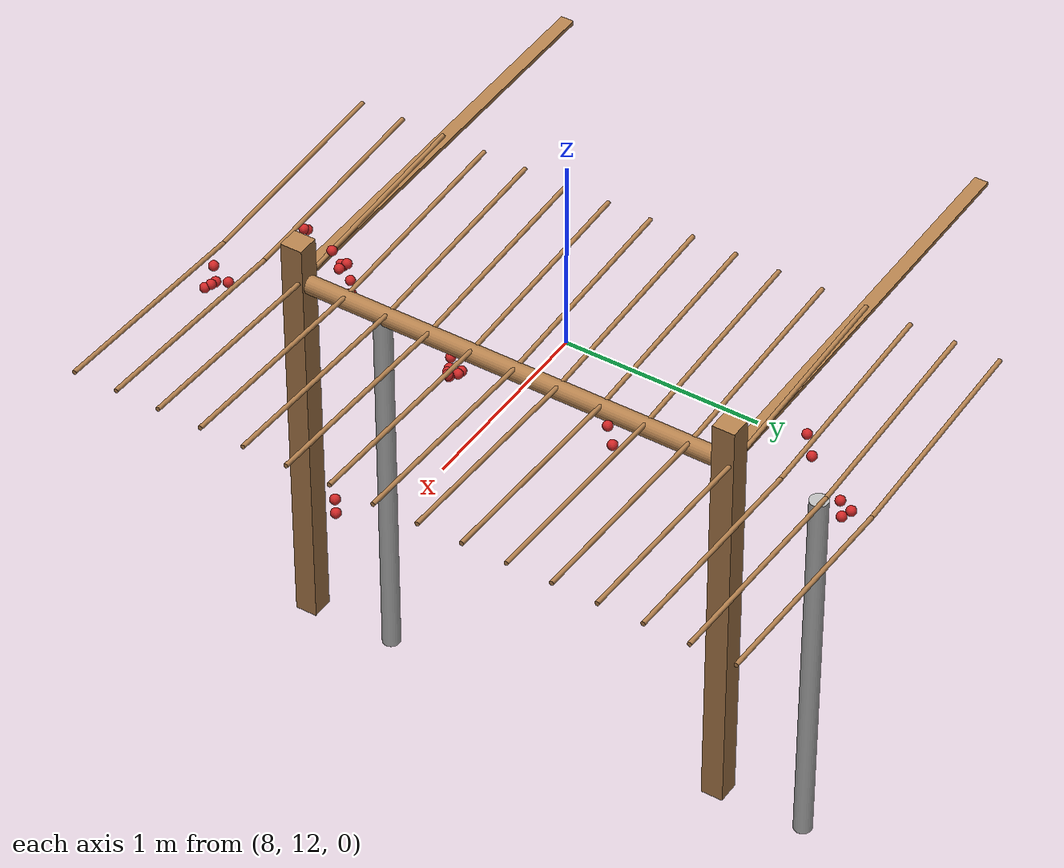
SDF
<sdf version="1.4">
 <model name="pergola">
  <include><name>post_61</name><pose>10.0 12.0 0 0 0 0</pose><uri>model://post</uri></include>
  <include><name>post_62</name><pose>10.0 14.0 0 0 0 0</pose><uri>model://post</uri></include>
  <link name="beam_50">
   <pose>9.0 12.0 1.81 0 0 0</pose>
   <collision name="collision"><geometry><box><size>2.0 0.06 0.02</size></box></geometry></collision>
   <visual name="visual">
    <geometry><box><size>2.0 0.06 0.02</size></box></geometry>
    <material><script><name>Gazebo/Wood</name></script></material>
   </visual>
   <inertial>
    <mass>5</mass>
    <inertia>
     <ixx>0.0016666666666666668</ixx>
     <ixy>0.0</ixy>
     <ixz>0.0</ixz>
     <iyy>1.6681666666666664</iyy>
     <iyz>0.0</iyz>
     <izz>1.6668333333333332</izz>
    </inertia>
   </inertial>
  </link>
  <link name="beam_51">
   <pose>9.0 14.0 1.81 0 0 0</pose>
   <collision name="collision"><geometry><box><size>2.0 0.06 0.02</size></box></geometry></collision>
   <visual name="visual">
    <geometry><box><size>2.0 0.06 0.02</size></box></geometry>
    <material><script><name>Gazebo/Wood</name></script></material>
   </visual>
   <inertial>
    <mass>5</mass>
    <inertia>
     <ixx>0.0016666666666666668</ixx>
     <ixy>0.0</ixy>
     <ixz>0.0</ixz>
     <iyy>1.6681666666666664</iyy>
     <iyz>0.0</iyz>
     <izz>1.6668333333333332</izz>
    </inertia>
   </inertial>
  </link>
  <include><name>tree_56</name><pose>10.0 12.4 0 0 0 0</pose><uri>model://tree_trunk</uri></include>
  <include><name>tree_57</name><pose>10.0 14.4 0 0 0 0</pose><uri>model://tree_trunk</uri></include>
  <link name="baseBranch_56">
   <pose>10.0 13.0 1.8 1.5707963267948966 0 0</pose>
   <collision name="collision">
    <geometry><cylinder><radius>0.04</radius><length>1.94</length></cylinder></geometry>
   </collision>
   <visual name="visual">
    <geometry><cylinder><radius>0.04</radius><length>1.94</length></cylinder></geometry>
    <material><script><name>Gazebo/WoodFloor</name></script></material>
   </visual>
   <inertial>
    <mass>10</mass>
    <inertia>
     <ixx>3.140333333333333</ixx>
     <ixy>0.0</ixy>
     <ixz>0.0</ixz>
     <iyy>3.140333333333333</iyy>
     <iyz>0.0</iyz>
     <izz>0.008</izz>
    </inertia>
   </inertial>
  </link>
  <link name="vine_917">
   <pose>9.5 11.63 1.85 0 -1.5208379310729538 0</pose>
   <collision name="collision">
    <geometry><cylinder><radius>0.01</radius><length>1.0012492197250393</length></cylinder></geometry>
   </collision>
   <visual name="visual">
    <geometry><cylinder><radius>0.01</radius><length>1.0012492197250393</length></cylinder></geometry>
    <material><script><name>Gazebo/WoodFloor</name></script></material>
   </visual>
   <inertial>
    <mass>5</mass>
    <inertia>
     <ixx>0.41783333333333345</ixx>
     <ixy>0.0</ixy>
     <ixz>0.0</ixz>
     <iyy>0.41783333333333345</iyy>
     <iyz>0.0</iyz>
     <izz>0.00025</izz>
    </inertia>
   </inertial>
  </link>
  <link name="vine_919">
   <pose>9.5 11.83 1.85 0 -1.5208379310729538 0</pose>
   <collision name="collision">
    <geometry><cylinder><radius>0.01</radius><length>1.0012492197250393</length></cylinder></geometry>
   </collision>
   <visual name="visual">
    <geometry><cylinder><radius>0.01</radius><length>1.0012492197250393</length></cylinder></geometry>
    <material><script><name>Gazebo/WoodFloor</name></script></material>
   </visual>
   <inertial>
    <mass>5</mass>
    <inertia>
     <ixx>0.41783333333333345</ixx>
     <ixy>0.0</ixy>
     <ixz>0.0</ixz>
     <iyy>0.41783333333333345</iyy>
     <iyz>0.0</iyz>
     <izz>0.00025</izz>
    </inertia>
   </inertial>
  </link>
  <link name="vine_921">
   <pose>9.5 12.03 1.85 0 -1.5208379310729538 0</pose>
   <collision name="collision">
    <geometry><cylinder><radius>0.01</radius><length>1.0012492197250393</length></cylinder></geometry>
   </collision>
   <visual name="visual">
    <geometry><cylinder><radius>0.01</radius><length>1.0012492197250393</length></cylinder></geometry>
    <material><script><name>Gazebo/WoodFloor</name></script></material>
   </visual>
   <inertial>
    <mass>5</mass>
    <inertia>
     <ixx>0.41783333333333345</ixx>
     <ixy>0.0</ixy>
     <ixz>0.0</ixz>
     <iyy>0.41783333333333345</iyy>
     <iyz>0.0</iyz>
     <izz>0.00025</izz>
    </inertia>
   </inertial>
  </link>
  <link name="vine_923">
   <pose>9.5 12.23 1.85 0 -1.5208379310729538 0</pose>
   <collision name="collision">
    <geometry><cylinder><radius>0.01</radius><length>1.0012492197250393</length></cylinder></geometry>
   </collision>
   <visual name="visual">
    <geometry><cylinder><radius>0.01</radius><length>1.0012492197250393</length></cylinder></geometry>
    <material><script><name>Gazebo/WoodFloor</name></script></material>
   </visual>
   <inertial>
    <mass>5</mass>
    <inertia>
     <ixx>0.41783333333333345</ixx>
     <ixy>0.0</ixy>
     <ixz>0.0</ixz>
     <iyy>0.41783333333333345</iyy>
     <iyz>0.0</iyz>
     <izz>0.00025</izz>
    </inertia>
   </inertial>
  </link>
  <link name="vine_925">
   <pose>9.5 12.43 1.85 0 -1.5208379310729538 0</pose>
   <collision name="collision">
    <geometry><cylinder><radius>0.01</radius><length>1.0012492197250393</length></cylinder></geometry>
   </collision>
   <visual name="visual">
    <geometry><cylinder><radius>0.01</radius><length>1.0012492197250393</length></cylinder></geometry>
    <material><script><name>Gazebo/WoodFloor</name></script></material>
   </visual>
   <inertial>
    <mass>5</mass>
    <inertia>
     <ixx>0.41783333333333345</ixx>
     <ixy>0.0</ixy>
     <ixz>0.0</ixz>
     <iyy>0.41783333333333345</iyy>
     <iyz>0.0</iyz>
     <izz>0.00025</izz>
    </inertia>
   </inertial>
  </link>
  <link name="vine_927">
   <pose>9.5 12.63 1.85 0 -1.5208379310729538 0</pose>
   <collision name="collision">
    <geometry><cylinder><radius>0.01</radius><length>1.0012492197250393</length></cylinder></geometry>
   </collision>
   <visual name="visual">
    <geometry><cylinder><radius>0.01</radius><length>1.0012492197250393</length></cylinder></geometry>
    <material><script><name>Gazebo/WoodFloor</name></script></material>
   </visual>
   <inertial>
    <mass>5</mass>
    <inertia>
     <ixx>0.41783333333333345</ixx>
     <ixy>0.0</ixy>
     <ixz>0.0</ixz>
     <iyy>0.41783333333333345</iyy>
     <iyz>0.0</iyz>
     <izz>0.00025</izz>
    </inertia>
   </inertial>
  </link>
  <link name="vine_929">
   <pose>9.5 12.83 1.85 0 -1.5208379310729538 0</pose>
   <collision name="collision">
    <geometry><cylinder><radius>0.01</radius><length>1.0012492197250393</length></cylinder></geometry>
   </collision>
   <visual name="visual">
    <geometry><cylinder><radius>0.01</radius><length>1.0012492197250393</length></cylinder></geometry>
    <material><script><name>Gazebo/WoodFloor</name></script></material>
   </visual>
   <inertial>
    <mass>5</mass>
    <inertia>
     <ixx>0.41783333333333345</ixx>
     <ixy>0.0</ixy>
     <ixz>0.0</ixz>
     <iyy>0.41783333333333345</iyy>
     <iyz>0.0</iyz>
     <izz>0.00025</izz>
    </inertia>
   </inertial>
  </link>
  <link name="vine_931">
   <pose>9.5 13.03 1.85 0 -1.5208379310729538 0</pose>
   <collision name="collision">
    <geometry><cylinder><radius>0.01</radius><length>1.0012492197250393</length></cylinder></geometry>
   </collision>
   <visual name="visual">
    <geometry><cylinder><radius>0.01</radius><length>1.0012492197250393</length></cylinder></geometry>
    <material><script><name>Gazebo/WoodFloor</name></script></material>
   </visual>
   <inertial>
    <mass>5</mass>
    <inertia>
     <ixx>0.41783333333333345</ixx>
     <ixy>0.0</ixy>
     <ixz>0.0</ixz>
     <iyy>0.41783333333333345</iyy>
     <iyz>0.0</iyz>
     <izz>0.00025</izz>
    </inertia>
   </inertial>
  </link>
  <link name="vine_933">
   <pose>9.5 13.23 1.85 0 -1.5208379310729538 0</pose>
   <collision name="collision">
    <geometry><cylinder><radius>0.01</radius><length>1.0012492197250393</length></cylinder></geometry>
   </collision>
   <visual name="visual">
    <geometry><cylinder><radius>0.01</radius><length>1.0012492197250393</length></cylinder></geometry>
    <material><script><name>Gazebo/WoodFloor</name></script></material>
   </visual>
   <inertial>
    <mass>5</mass>
    <inertia>
     <ixx>0.41783333333333345</ixx>
     <ixy>0.0</ixy>
     <ixz>0.0</ixz>
     <iyy>0.41783333333333345</iyy>
     <iyz>0.0</iyz>
     <izz>0.00025</izz>
    </inertia>
   </inertial>
  </link>
  <link name="vine_935">
   <pose>9.5 13.43 1.85 0 -1.5208379310729538 0</pose>
   <collision name="collision">
    <geometry><cylinder><radius>0.01</radius><length>1.0012492197250393</length></cylinder></geometry>
   </collision>
   <visual name="visual">
    <geometry><cylinder><radius>0.01</radius><length>1.0012492197250393</length></cylinder></geometry>
    <material><script><name>Gazebo/WoodFloor</name></script></material>
   </visual>
   <inertial>
    <mass>5</mass>
    <inertia>
     <ixx>0.41783333333333345</ixx>
     <ixy>0.0</ixy>
     <ixz>0.0</ixz>
     <iyy>0.41783333333333345</iyy>
     <iyz>0.0</iyz>
     <izz>0.00025</izz>
    </inertia>
   </inertial>
  </link>
  <link name="vine_937">
   <pose>9.5 13.63 1.85 0 -1.5208379310729538 0</pose>
   <collision name="collision">
    <geometry><cylinder><radius>0.01</radius><length>1.0012492197250393</length></cylinder></geometry>
   </collision>
   <visual name="visual">
    <geometry><cylinder><radius>0.01</radius><length>1.0012492197250393</length></cylinder></geometry>
    <material><script><name>Gazebo/WoodFloor</name></script></material>
   </visual>
   <inertial>
    <mass>5</mass>
    <inertia>
     <ixx>0.41783333333333345</ixx>
     <ixy>0.0</ixy>
     <ixz>0.0</ixz>
     <iyy>0.41783333333333345</iyy>
     <iyz>0.0</iyz>
     <izz>0.00025</izz>
    </inertia>
   </inertial>
  </link>
  <link name="vine_939">
   <pose>9.5 13.83 1.85 0 -1.5208379310729538 0</pose>
   <collision name="collision">
    <geometry><cylinder><radius>0.01</radius><length>1.0012492197250393</length></cylinder></geometry>
   </collision>
   <visual name="visual">
    <geometry><cylinder><radius>0.01</radius><length>1.0012492197250393</length></cylinder></geometry>
    <material><script><name>Gazebo/WoodFloor</name></script></material>
   </visual>
   <inertial>
    <mass>5</mass>
    <inertia>
     <ixx>0.41783333333333345</ixx>
     <ixy>0.0</ixy>
     <ixz>0.0</ixz>
     <iyy>0.41783333333333345</iyy>
     <iyz>0.0</iyz>
     <izz>0.00025</izz>
    </inertia>
   </inertial>
  </link>
  <link name="vine_941">
   <pose>9.5 14.03 1.85 0 -1.5208379310729538 0</pose>
   <collision name="collision">
    <geometry><cylinder><radius>0.01</radius><length>1.0012492197250393</length></cylinder></geometry>
   </collision>
   <visual name="visual">
    <geometry><cylinder><radius>0.01</radius><length>1.0012492197250393</length></cylinder></geometry>
    <material><script><name>Gazebo/WoodFloor</name></script></material>
   </visual>
   <inertial>
    <mass>5</mass>
    <inertia>
     <ixx>0.41783333333333345</ixx>
     <ixy>0.0</ixy>
     <ixz>0.0</ixz>
     <iyy>0.41783333333333345</iyy>
     <iyz>0.0</iyz>
     <izz>0.00025</izz>
    </inertia>
   </inertial>
  </link>
  <link name="vine_943">
   <pose>9.5 14.23 1.85 0 -1.5208379310729538 0</pose>
   <collision name="collision">
    <geometry><cylinder><radius>0.01</radius><length>1.0012492197250393</length></cylinder></geometry>
   </collision>
   <visual name="visual">
    <geometry><cylinder><radius>0.01</radius><length>1.0012492197250393</length></cylinder></geometry>
    <material><script><name>Gazebo/WoodFloor</name></script></material>
   </visual>
   <inertial>
    <mass>5</mass>
    <inertia>
     <ixx>0.41783333333333345</ixx>
     <ixy>0.0</ixy>
     <ixz>0.0</ixz>
     <iyy>0.41783333333333345</iyy>
     <iyz>0.0</iyz>
     <izz>0.00025</izz>
    </inertia>
   </inertial>
  </link>
  <link name="vine_945">
   <pose>9.5 14.43 1.85 0 -1.5208379310729538 0</pose>
   <collision name="collision">
    <geometry><cylinder><radius>0.01</radius><length>1.0012492197250393</length></cylinder></geometry>
   </collision>
   <visual name="visual">
    <geometry><cylinder><radius>0.01</radius><length>1.0012492197250393</length></cylinder></geometry>
    <material><script><name>Gazebo/WoodFloor</name></script></material>
   </visual>
   <inertial>
    <mass>5</mass>
    <inertia>
     <ixx>0.41783333333333345</ixx>
     <ixy>0.0</ixy>
     <ixz>0.0</ixz>
     <iyy>0.41783333333333345</iyy>
     <iyz>0.0</iyz>
     <izz>0.00025</izz>
    </inertia>
   </inertial>
  </link>
  <link name="vine_947">
   <pose>9.5 14.63 1.85 0 -1.5208379310729538 0</pose>
   <collision name="collision">
    <geometry><cylinder><radius>0.01</radius><length>1.0012492197250393</length></cylinder></geometry>
   </collision>
   <visual name="visual">
    <geometry><cylinder><radius>0.01</radius><length>1.0012492197250393</length></cylinder></geometry>
    <material><script><name>Gazebo/WoodFloor</name></script></material>
   </visual>
   <inertial>
    <mass>5</mass>
    <inertia>
     <ixx>0.41783333333333345</ixx>
     <ixy>0.0</ixy>
     <ixz>0.0</ixz>
     <iyy>0.41783333333333345</iyy>
     <iyz>0.0</iyz>
     <izz>0.00025</izz>
    </inertia>
   </inertial>
  </link>
  <link name="vine_1116">
   <pose>10.5 11.63 1.85 0 1.5208379310729538 0</pose>
   <collision name="collision">
    <geometry><cylinder><radius>0.01</radius><length>1.0012492197250393</length></cylinder></geometry>
   </collision>
   <visual name="visual">
    <geometry><cylinder><radius>0.01</radius><length>1.0012492197250393</length></cylinder></geometry>
    <material><script><name>Gazebo/WoodFloor</name></script></material>
   </visual>
   <inertial>
    <mass>5</mass>
    <inertia>
     <ixx>0.41783333333333345</ixx>
     <ixy>0.0</ixy>
     <ixz>0.0</ixz>
     <iyy>0.41783333333333345</iyy>
     <iyz>0.0</iyz>
     <izz>0.00025</izz>
    </inertia>
   </inertial>
  </link>
  <link name="vine_1118">
   <pose>10.5 11.83 1.85 0 1.5208379310729538 0</pose>
   <collision name="collision">
    <geometry><cylinder><radius>0.01</radius><length>1.0012492197250393</length></cylinder></geometry>
   </collision>
   <visual name="visual">
    <geometry><cylinder><radius>0.01</radius><length>1.0012492197250393</length></cylinder></geometry>
    <material><script><name>Gazebo/WoodFloor</name></script></material>
   </visual>
   <inertial>
    <mass>5</mass>
    <inertia>
     <ixx>0.41783333333333345</ixx>
     <ixy>0.0</ixy>
     <ixz>0.0</ixz>
     <iyy>0.41783333333333345</iyy>
     <iyz>0.0</iyz>
     <izz>0.00025</izz>
    </inertia>
   </inertial>
  </link>
  <link name="vine_1120">
   <pose>10.5 12.03 1.85 0 1.5208379310729538 0</pose>
   <collision name="collision">
    <geometry><cylinder><radius>0.01</radius><length>1.0012492197250393</length></cylinder></geometry>
   </collision>
   <visual name="visual">
    <geometry><cylinder><radius>0.01</radius><length>1.0012492197250393</length></cylinder></geometry>
    <material><script><name>Gazebo/WoodFloor</name></script></material>
   </visual>
   <inertial>
    <mass>5</mass>
    <inertia>
     <ixx>0.41783333333333345</ixx>
     <ixy>0.0</ixy>
     <ixz>0.0</ixz>
     <iyy>0.41783333333333345</iyy>
     <iyz>0.0</iyz>
     <izz>0.00025</izz>
    </inertia>
   </inertial>
  </link>
  <link name="vine_1122">
   <pose>10.5 12.23 1.85 0 1.5208379310729538 0</pose>
   <collision name="collision">
    <geometry><cylinder><radius>0.01</radius><length>1.0012492197250393</length></cylinder></geometry>
   </collision>
   <visual name="visual">
    <geometry><cylinder><radius>0.01</radius><length>1.0012492197250393</length></cylinder></geometry>
    <material><script><name>Gazebo/WoodFloor</name></script></material>
   </visual>
   <inertial>
    <mass>5</mass>
    <inertia>
     <ixx>0.41783333333333345</ixx>
     <ixy>0.0</ixy>
     <ixz>0.0</ixz>
     <iyy>0.41783333333333345</iyy>
     <iyz>0.0</iyz>
     <izz>0.00025</izz>
    </inertia>
   </inertial>
  </link>
  <link name="vine_1124">
   <pose>10.5 12.43 1.85 0 1.5208379310729538 0</pose>
   <collision name="collision">
    <geometry><cylinder><radius>0.01</radius><length>1.0012492197250393</length></cylinder></geometry>
   </collision>
   <visual name="visual">
    <geometry><cylinder><radius>0.01</radius><length>1.0012492197250393</length></cylinder></geometry>
    <material><script><name>Gazebo/WoodFloor</name></script></material>
   </visual>
   <inertial>
    <mass>5</mass>
    <inertia>
     <ixx>0.41783333333333345</ixx>
     <ixy>0.0</ixy>
     <ixz>0.0</ixz>
     <iyy>0.41783333333333345</iyy>
     <iyz>0.0</iyz>
     <izz>0.00025</izz>
    </inertia>
   </inertial>
  </link>
  <link name="vine_1126">
   <pose>10.5 12.63 1.85 0 1.5208379310729538 0</pose>
   <collision name="collision">
    <geometry><cylinder><radius>0.01</radius><length>1.0012492197250393</length></cylinder></geometry>
   </collision>
   <visual name="visual">
    <geometry><cylinder><radius>0.01</radius><length>1.0012492197250393</length></cylinder></geometry>
    <material><script><name>Gazebo/WoodFloor</name></script></material>
   </visual>
   <inertial>
    <mass>5</mass>
    <inertia>
     <ixx>0.41783333333333345</ixx>
     <ixy>0.0</ixy>
     <ixz>0.0</ixz>
     <iyy>0.41783333333333345</iyy>
     <iyz>0.0</iyz>
     <izz>0.00025</izz>
    </inertia>
   </inertial>
  </link>
  <link name="vine_1128">
   <pose>10.5 12.83 1.85 0 1.5208379310729538 0</pose>
   <collision name="collision">
    <geometry><cylinder><radius>0.01</radius><length>1.0012492197250393</length></cylinder></geometry>
   </collision>
   <visual name="visual">
    <geometry><cylinder><radius>0.01</radius><length>1.0012492197250393</length></cylinder></geometry>
    <material><script><name>Gazebo/WoodFloor</name></script></material>
   </visual>
   <inertial>
    <mass>5</mass>
    <inertia>
     <ixx>0.41783333333333345</ixx>
     <ixy>0.0</ixy>
     <ixz>0.0</ixz>
     <iyy>0.41783333333333345</iyy>
     <iyz>0.0</iyz>
     <izz>0.00025</izz>
    </inertia>
   </inertial>
  </link>
  <link name="vine_1130">
   <pose>10.5 13.03 1.85 0 1.5208379310729538 0</pose>
   <collision name="collision">
    <geometry><cylinder><radius>0.01</radius><length>1.0012492197250393</length></cylinder></geometry>
   </collision>
   <visual name="visual">
    <geometry><cylinder><radius>0.01</radius><length>1.0012492197250393</length></cylinder></geometry>
    <material><script><name>Gazebo/WoodFloor</name></script></material>
   </visual>
   <inertial>
    <mass>5</mass>
    <inertia>
     <ixx>0.41783333333333345</ixx>
     <ixy>0.0</ixy>
     <ixz>0.0</ixz>
     <iyy>0.41783333333333345</iyy>
     <iyz>0.0</iyz>
     <izz>0.00025</izz>
    </inertia>
   </inertial>
  </link>
  <link name="vine_1132">
   <pose>10.5 13.23 1.85 0 1.5208379310729538 0</pose>
   <collision name="collision">
    <geometry><cylinder><radius>0.01</radius><length>1.0012492197250393</length></cylinder></geometry>
   </collision>
   <visual name="visual">
    <geometry><cylinder><radius>0.01</radius><length>1.0012492197250393</length></cylinder></geometry>
    <material><script><name>Gazebo/WoodFloor</name></script></material>
   </visual>
   <inertial>
    <mass>5</mass>
    <inertia>
     <ixx>0.41783333333333345</ixx>
     <ixy>0.0</ixy>
     <ixz>0.0</ixz>
     <iyy>0.41783333333333345</iyy>
     <iyz>0.0</iyz>
     <izz>0.00025</izz>
    </inertia>
   </inertial>
  </link>
  <link name="vine_1134">
   <pose>10.5 13.43 1.85 0 1.5208379310729538 0</pose>
   <collision name="collision">
    <geometry><cylinder><radius>0.01</radius><length>1.0012492197250393</length></cylinder></geometry>
   </collision>
   <visual name="visual">
    <geometry><cylinder><radius>0.01</radius><length>1.0012492197250393</length></cylinder></geometry>
    <material><script><name>Gazebo/WoodFloor</name></script></material>
   </visual>
   <inertial>
    <mass>5</mass>
    <inertia>
     <ixx>0.41783333333333345</ixx>
     <ixy>0.0</ixy>
     <ixz>0.0</ixz>
     <iyy>0.41783333333333345</iyy>
     <iyz>0.0</iyz>
     <izz>0.00025</izz>
    </inertia>
   </inertial>
  </link>
  <link name="vine_1136">
   <pose>10.5 13.63 1.85 0 1.5208379310729538 0</pose>
   <collision name="collision">
    <geometry><cylinder><radius>0.01</radius><length>1.0012492197250393</length></cylinder></geometry>
   </collision>
   <visual name="visual">
    <geometry><cylinder><radius>0.01</radius><length>1.0012492197250393</length></cylinder></geometry>
    <material><script><name>Gazebo/WoodFloor</name></script></material>
   </visual>
   <inertial>
    <mass>5</mass>
    <inertia>
     <ixx>0.41783333333333345</ixx>
     <ixy>0.0</ixy>
     <ixz>0.0</ixz>
     <iyy>0.41783333333333345</iyy>
     <iyz>0.0</iyz>
     <izz>0.00025</izz>
    </inertia>
   </inertial>
  </link>
  <link name="vine_1138">
   <pose>10.5 13.83 1.85 0 1.5208379310729538 0</pose>
   <collision name="collision">
    <geometry><cylinder><radius>0.01</radius><length>1.0012492197250393</length></cylinder></geometry>
   </collision>
   <visual name="visual">
    <geometry><cylinder><radius>0.01</radius><length>1.0012492197250393</length></cylinder></geometry>
    <material><script><name>Gazebo/WoodFloor</name></script></material>
   </visual>
   <inertial>
    <mass>5</mass>
    <inertia>
     <ixx>0.41783333333333345</ixx>
     <ixy>0.0</ixy>
     <ixz>0.0</ixz>
     <iyy>0.41783333333333345</iyy>
     <iyz>0.0</iyz>
     <izz>0.00025</izz>
    </inertia>
   </inertial>
  </link>
  <link name="vine_1140">
   <pose>10.5 14.03 1.85 0 1.5208379310729538 0</pose>
   <collision name="collision">
    <geometry><cylinder><radius>0.01</radius><length>1.0012492197250393</length></cylinder></geometry>
   </collision>
   <visual name="visual">
    <geometry><cylinder><radius>0.01</radius><length>1.0012492197250393</length></cylinder></geometry>
    <material><script><name>Gazebo/WoodFloor</name></script></material>
   </visual>
   <inertial>
    <mass>5</mass>
    <inertia>
     <ixx>0.41783333333333345</ixx>
     <ixy>0.0</ixy>
     <ixz>0.0</ixz>
     <iyy>0.41783333333333345</iyy>
     <iyz>0.0</iyz>
     <izz>0.00025</izz>
    </inertia>
   </inertial>
  </link>
  <link name="vine_1142">
   <pose>10.5 14.23 1.85 0 1.5208379310729538 0</pose>
   <collision name="collision">
    <geometry><cylinder><radius>0.01</radius><length>1.0012492197250393</length></cylinder></geometry>
   </collision>
   <visual name="visual">
    <geometry><cylinder><radius>0.01</radius><length>1.0012492197250393</length></cylinder></geometry>
    <material><script><name>Gazebo/WoodFloor</name></script></material>
   </visual>
   <inertial>
    <mass>5</mass>
    <inertia>
     <ixx>0.41783333333333345</ixx>
     <ixy>0.0</ixy>
     <ixz>0.0</ixz>
     <iyy>0.41783333333333345</iyy>
     <iyz>0.0</iyz>
     <izz>0.00025</izz>
    </inertia>
   </inertial>
  </link>
  <link name="vine_1144">
   <pose>10.5 14.43 1.85 0 1.5208379310729538 0</pose>
   <collision name="collision">
    <geometry><cylinder><radius>0.01</radius><length>1.0012492197250393</length></cylinder></geometry>
   </collision>
   <visual name="visual">
    <geometry><cylinder><radius>0.01</radius><length>1.0012492197250393</length></cylinder></geometry>
    <material><script><name>Gazebo/WoodFloor</name></script></material>
   </visual>
   <inertial>
    <mass>5</mass>
    <inertia>
     <ixx>0.41783333333333345</ixx>
     <ixy>0.0</ixy>
     <ixz>0.0</ixz>
     <iyy>0.41783333333333345</iyy>
     <iyz>0.0</iyz>
     <izz>0.00025</izz>
    </inertia>
   </inertial>
  </link>
  <link name="vine_1146">
   <pose>10.5 14.63 1.85 0 1.5208379310729538 0</pose>
   <collision name="collision">
    <geometry><cylinder><radius>0.01</radius><length>1.0012492197250393</length></cylinder></geometry>
   </collision>
   <visual name="visual">
    <geometry><cylinder><radius>0.01</radius><length>1.0012492197250393</length></cylinder></geometry>
    <material><script><name>Gazebo/WoodFloor</name></script></material>
   </visual>
   <inertial>
    <mass>5</mass>
    <inertia>
     <ixx>0.41783333333333345</ixx>
     <ixy>0.0</ixy>
     <ixz>0.0</ixz>
     <iyy>0.41783333333333345</iyy>
     <iyz>0.0</iyz>
     <izz>0.00025</izz>
    </inertia>
   </inertial>
  </link>
  <link name="fruit_3">
   <pose>9.548868752792128 14.090656828522292 1.644890765745339 0 0 0</pose>
   <collision name="fruit_collision_3"><geometry><sphere><radius>0.022</radius></sphere></geometry></collision>
   <visual name="visual">
    <geometry><sphere><radius>0.022</radius></sphere></geometry>
    <material><script><name>Gazebo/Red</name></script></material>
   </visual>
   <inertial>
    <mass>0.05</mass>
    <inertia>
     <ixx>9.679999999999999e-06</ixx>
     <ixy>0.0</ixy>
     <ixz>0.0</ixz>
     <iyy>9.679999999999999e-06</iyy>
     <iyz>0.0</iyz>
     <izz>9.679999999999999e-06</izz>
    </inertia>
   </inertial>
   <sensor name="fruit_contact_3" type="contact">
    <contact><collision>fruit_collision_3</collision></contact>
   </sensor>
  </link>
  <link name="fruit_45">
   <pose>10.842603374605464 12.74237736994739 1.6346381666126752 0 0 0</pose>
   <collision name="fruit_collision_45"><geometry><sphere><radius>0.022</radius></sphere></geometry></collision>
   <visual name="visual">
    <geometry><sphere><radius>0.022</radius></sphere></geometry>
    <material><script><name>Gazebo/Red</name></script></material>
   </visual>
   <inertial>
    <mass>0.05</mass>
    <inertia>
     <ixx>9.679999999999999e-06</ixx>
     <ixy>0.0</ixy>
     <ixz>0.0</ixz>
     <iyy>9.679999999999999e-06</iyy>
     <iyz>0.0</iyz>
     <izz>9.679999999999999e-06</izz>
    </inertia>
   </inertial>
   <sensor name="fruit_contact_45" type="contact">
    <contact><collision>fruit_collision_45</collision></contact>
   </sensor>
  </link>
  <link name="fruit_90">
   <pose>9.934091698684382 12.678102502318616 1.660589423861386 0 0 0</pose>
   <collision name="fruit_collision_90"><geometry><sphere><radius>0.022</radius></sphere></geometry></collision>
   <visual name="visual">
    <geometry><sphere><radius>0.022</radius></sphere></geometry>
    <material><script><name>Gazebo/Red</name></script></material>
   </visual>
   <inertial>
    <mass>0.05</mass>
    <inertia>
     <ixx>9.679999999999999e-06</ixx>
     <ixy>0.0</ixy>
     <ixz>0.0</ixz>
     <iyy>9.679999999999999e-06</iyy>
     <iyz>0.0</iyz>
     <izz>9.679999999999999e-06</izz>
    </inertia>
   </inertial>
   <sensor name="fruit_contact_90" type="contact">
    <contact><collision>fruit_collision_90</collision></contact>
   </sensor>
  </link>
  <link name="fruit_138">
   <pose>9.904621012731448 14.441306942356121 1.7433137298863646 0 0 0</pose>
   <collision name="fruit_collision_138"><geometry><sphere><radius>0.022</radius></sphere></geometry></collision>
   <visual name="visual">
    <geometry><sphere><radius>0.022</radius></sphere></geometry>
    <material><script><name>Gazebo/Red</name></script></material>
   </visual>
   <inertial>
    <mass>0.05</mass>
    <inertia>
     <ixx>9.679999999999999e-06</ixx>
     <ixy>0.0</ixy>
     <ixz>0.0</ixz>
     <iyy>9.679999999999999e-06</iyy>
     <iyz>0.0</iyz>
     <izz>9.679999999999999e-06</izz>
    </inertia>
   </inertial>
   <sensor name="fruit_contact_138" type="contact">
    <contact><collision>fruit_collision_138</collision></contact>
   </sensor>
  </link>
  <link name="fruit_174">
   <pose>10.142595586162653 11.68376820555382 1.8317966642529173 0 0 0</pose>
   <collision name="fruit_collision_174"><geometry><sphere><radius>0.022</radius></sphere></geometry></collision>
   <visual name="visual">
    <geometry><sphere><radius>0.022</radius></sphere></geometry>
    <material><script><name>Gazebo/Red</name></script></material>
   </visual>
   <inertial>
    <mass>0.05</mass>
    <inertia>
     <ixx>9.679999999999999e-06</ixx>
     <ixy>0.0</ixy>
     <ixz>0.0</ixz>
     <iyy>9.679999999999999e-06</iyy>
     <iyz>0.0</iyz>
     <izz>9.679999999999999e-06</izz>
    </inertia>
   </inertial>
   <sensor name="fruit_contact_174" type="contact">
    <contact><collision>fruit_collision_174</collision></contact>
   </sensor>
  </link>
  <link name="fruit_203">
   <pose>10.056998881652165 13.488351836366377 1.7817508535054944 0 0 0</pose>
   <collision name="fruit_collision_203"><geometry><sphere><radius>0.022</radius></sphere></geometry></collision>
   <visual name="visual">
    <geometry><sphere><radius>0.022</radius></sphere></geometry>
    <material><script><name>Gazebo/Red</name></script></material>
   </visual>
   <inertial>
    <mass>0.05</mass>
    <inertia>
     <ixx>9.679999999999999e-06</ixx>
     <ixy>0.0</ixy>
     <ixz>0.0</ixz>
     <iyy>9.679999999999999e-06</iyy>
     <iyz>0.0</iyz>
     <izz>9.679999999999999e-06</izz>
    </inertia>
   </inertial>
   <sensor name="fruit_contact_203" type="contact">
    <contact><collision>fruit_collision_203</collision></contact>
   </sensor>
  </link>
  <link name="fruit_223">
   <pose>9.591692215463283 11.959328090865146 1.4860429655155947 0 0 0</pose>
   <collision name="fruit_collision_223"><geometry><sphere><radius>0.022</radius></sphere></geometry></collision>
   <visual name="visual">
    <geometry><sphere><radius>0.022</radius></sphere></geometry>
    <material><script><name>Gazebo/Red</name></script></material>
   </visual>
   <inertial>
    <mass>0.05</mass>
    <inertia>
     <ixx>9.679999999999999e-06</ixx>
     <ixy>0.0</ixy>
     <ixz>0.0</ixz>
     <iyy>9.679999999999999e-06</iyy>
     <iyz>0.0</iyz>
     <izz>9.679999999999999e-06</izz>
    </inertia>
   </inertial>
   <sensor name="fruit_contact_223" type="contact">
    <contact><collision>fruit_collision_223</collision></contact>
   </sensor>
  </link>
  <link name="fruit_265">
   <pose>9.839213588206949 12.04989928417288 1.860890667167326 0 0 0</pose>
   <collision name="fruit_collision_265"><geometry><sphere><radius>0.022</radius></sphere></geometry></collision>
   <visual name="visual">
    <geometry><sphere><radius>0.022</radius></sphere></geometry>
    <material><script><name>Gazebo/Red</name></script></material>
   </visual>
   <inertial>
    <mass>0.05</mass>
    <inertia>
     <ixx>9.679999999999999e-06</ixx>
     <ixy>0.0</ixy>
     <ixz>0.0</ixz>
     <iyy>9.679999999999999e-06</iyy>
     <iyz>0.0</iyz>
     <izz>9.679999999999999e-06</izz>
    </inertia>
   </inertial>
   <sensor name="fruit_contact_265" type="contact">
    <contact><collision>fruit_collision_265</collision></contact>
   </sensor>
  </link>
  <link name="fruit_374">
   <pose>10.896693413903078 12.782752226053166 1.6257234725450658 0 0 0</pose>
   <collision name="fruit_collision_374"><geometry><sphere><radius>0.022</radius></sphere></geometry></collision>
   <visual name="visual">
    <geometry><sphere><radius>0.022</radius></sphere></geometry>
    <material><script><name>Gazebo/Red</name></script></material>
   </visual>
   <inertial>
    <mass>0.05</mass>
    <inertia>
     <ixx>9.679999999999999e-06</ixx>
     <ixy>0.0</ixy>
     <ixz>0.0</ixz>
     <iyy>9.679999999999999e-06</iyy>
     <iyz>0.0</iyz>
     <izz>9.679999999999999e-06</izz>
    </inertia>
   </inertial>
   <sensor name="fruit_contact_374" type="contact">
    <contact><collision>fruit_collision_374</collision></contact>
   </sensor>
  </link>
  <link name="fruit_375">
   <pose>9.980812613908972 12.702600270544021 1.6495933162818102 0 0 0</pose>
   <collision name="fruit_collision_375"><geometry><sphere><radius>0.022</radius></sphere></geometry></collision>
   <visual name="visual">
    <geometry><sphere><radius>0.022</radius></sphere></geometry>
    <material><script><name>Gazebo/Red</name></script></material>
   </visual>
   <inertial>
    <mass>0.05</mass>
    <inertia>
     <ixx>9.679999999999999e-06</ixx>
     <ixy>0.0</ixy>
     <ixz>0.0</ixz>
     <iyy>9.679999999999999e-06</iyy>
     <iyz>0.0</iyz>
     <izz>9.679999999999999e-06</izz>
    </inertia>
   </inertial>
   <sensor name="fruit_contact_375" type="contact">
    <contact><collision>fruit_collision_375</collision></contact>
   </sensor>
  </link>
  <link name="fruit_408">
   <pose>10.014506867998826 12.722944870987185 1.6403577353043401 0 0 0</pose>
   <collision name="fruit_collision_408"><geometry><sphere><radius>0.022</radius></sphere></geometry></collision>
   <visual name="visual">
    <geometry><sphere><radius>0.022</radius></sphere></geometry>
    <material><script><name>Gazebo/Red</name></script></material>
   </visual>
   <inertial>
    <mass>0.05</mass>
    <inertia>
     <ixx>9.679999999999999e-06</ixx>
     <ixy>0.0</ixy>
     <ixz>0.0</ixz>
     <iyy>9.679999999999999e-06</iyy>
     <iyz>0.0</iyz>
     <izz>9.679999999999999e-06</izz>
    </inertia>
   </inertial>
   <sensor name="fruit_contact_408" type="contact">
    <contact><collision>fruit_collision_408</collision></contact>
   </sensor>
  </link>
  <link name="fruit_428">
   <pose>10.201610361068562 11.734492805094714 1.813442966443458 0 0 0</pose>
   <collision name="fruit_collision_428"><geometry><sphere><radius>0.022</radius></sphere></geometry></collision>
   <visual name="visual">
    <geometry><sphere><radius>0.022</radius></sphere></geometry>
    <material><script><name>Gazebo/Red</name></script></material>
   </visual>
   <inertial>
    <mass>0.05</mass>
    <inertia>
     <ixx>9.679999999999999e-06</ixx>
     <ixy>0.0</ixy>
     <ixz>0.0</ixz>
     <iyy>9.679999999999999e-06</iyy>
     <iyz>0.0</iyz>
     <izz>9.679999999999999e-06</izz>
    </inertia>
   </inertial>
   <sensor name="fruit_contact_428" type="contact">
    <contact><collision>fruit_collision_428</collision></contact>
   </sensor>
  </link>
  <link name="fruit_464">
   <pose>9.872350107498795 12.144893613355153 1.859281660824734 0 0 0</pose>
   <collision name="fruit_collision_464"><geometry><sphere><radius>0.022</radius></sphere></geometry></collision>
   <visual name="visual">
    <geometry><sphere><radius>0.022</radius></sphere></geometry>
    <material><script><name>Gazebo/Red</name></script></material>
   </visual>
   <inertial>
    <mass>0.05</mass>
    <inertia>
     <ixx>9.679999999999999e-06</ixx>
     <ixy>0.0</ixy>
     <ixz>0.0</ixz>
     <iyy>9.679999999999999e-06</iyy>
     <iyz>0.0</iyz>
     <izz>9.679999999999999e-06</izz>
    </inertia>
   </inertial>
   <sensor name="fruit_contact_464" type="contact">
    <contact><collision>fruit_collision_464</collision></contact>
   </sensor>
  </link>
  <link name="fruit_471">
   <pose>10.024006345614412 12.723585359732372 1.6564268616361917 0 0 0</pose>
   <collision name="fruit_collision_471"><geometry><sphere><radius>0.022</radius></sphere></geometry></collision>
   <visual name="visual">
    <geometry><sphere><radius>0.022</radius></sphere></geometry>
    <material><script><name>Gazebo/Red</name></script></material>
   </visual>
   <inertial>
    <mass>0.05</mass>
    <inertia>
     <ixx>9.679999999999999e-06</ixx>
     <ixy>0.0</ixy>
     <ixz>0.0</ixz>
     <iyy>9.679999999999999e-06</iyy>
     <iyz>0.0</iyz>
     <izz>9.679999999999999e-06</izz>
    </inertia>
   </inertial>
   <sensor name="fruit_contact_471" type="contact">
    <contact><collision>fruit_collision_471</collision></contact>
   </sensor>
  </link>
  <link name="fruit_486">
   <pose>10.00329845521591 12.70945514755379 1.648670626089895 0 0 0</pose>
   <collision name="fruit_collision_486"><geometry><sphere><radius>0.022</radius></sphere></geometry></collision>
   <visual name="visual">
    <geometry><sphere><radius>0.022</radius></sphere></geometry>
    <material><script><name>Gazebo/Red</name></script></material>
   </visual>
   <inertial>
    <mass>0.05</mass>
    <inertia>
     <ixx>9.679999999999999e-06</ixx>
     <ixy>0.0</ixy>
     <ixz>0.0</ixz>
     <iyy>9.679999999999999e-06</iyy>
     <iyz>0.0</iyz>
     <izz>9.679999999999999e-06</izz>
    </inertia>
   </inertial>
   <sensor name="fruit_contact_486" type="contact">
    <contact><collision>fruit_collision_486</collision></contact>
   </sensor>
  </link>
  <link name="fruit_513">
   <pose>9.908683823753137 12.132308419535628 1.8533888535593914 0 0 0</pose>
   <collision name="fruit_collision_513"><geometry><sphere><radius>0.022</radius></sphere></geometry></collision>
   <visual name="visual">
    <geometry><sphere><radius>0.022</radius></sphere></geometry>
    <material><script><name>Gazebo/Red</name></script></material>
   </visual>
   <inertial>
    <mass>0.05</mass>
    <inertia>
     <ixx>9.679999999999999e-06</ixx>
     <ixy>0.0</ixy>
     <ixz>0.0</ixz>
     <iyy>9.679999999999999e-06</iyy>
     <iyz>0.0</iyz>
     <izz>9.679999999999999e-06</izz>
    </inertia>
   </inertial>
   <sensor name="fruit_contact_513" type="contact">
    <contact><collision>fruit_collision_513</collision></contact>
   </sensor>
  </link>
  <link name="fruit_527">
   <pose>10.231450677014518 11.733020458656858 1.8204034541728331 0 0 0</pose>
   <collision name="fruit_collision_527"><geometry><sphere><radius>0.022</radius></sphere></geometry></collision>
   <visual name="visual">
    <geometry><sphere><radius>0.022</radius></sphere></geometry>
    <material><script><name>Gazebo/Red</name></script></material>
   </visual>
   <inertial>
    <mass>0.05</mass>
    <inertia>
     <ixx>9.679999999999999e-06</ixx>
     <ixy>0.0</ixy>
     <ixz>0.0</ixz>
     <iyy>9.679999999999999e-06</iyy>
     <iyz>0.0</iyz>
     <izz>9.679999999999999e-06</izz>
    </inertia>
   </inertial>
   <sensor name="fruit_contact_527" type="contact">
    <contact><collision>fruit_collision_527</collision></contact>
   </sensor>
  </link>
  <link name="fruit_612">
   <pose>10.187748849986608 11.786839805659598 1.8244274327086514 0 0 0</pose>
   <collision name="fruit_collision_612"><geometry><sphere><radius>0.022</radius></sphere></geometry></collision>
   <visual name="visual">
    <geometry><sphere><radius>0.022</radius></sphere></geometry>
    <material><script><name>Gazebo/Red</name></script></material>
   </visual>
   <inertial>
    <mass>0.05</mass>
    <inertia>
     <ixx>9.679999999999999e-06</ixx>
     <ixy>0.0</ixy>
     <ixz>0.0</ixz>
     <iyy>9.679999999999999e-06</iyy>
     <iyz>0.0</iyz>
     <izz>9.679999999999999e-06</izz>
    </inertia>
   </inertial>
   <sensor name="fruit_contact_612" type="contact">
    <contact><collision>fruit_collision_612</collision></contact>
   </sensor>
  </link>
  <link name="fruit_624">
   <pose>9.931984331206325 14.50541141875643 1.7431778932744548 0 0 0</pose>
   <collision name="fruit_collision_624"><geometry><sphere><radius>0.022</radius></sphere></geometry></collision>
   <visual name="visual">
    <geometry><sphere><radius>0.022</radius></sphere></geometry>
    <material><script><name>Gazebo/Red</name></script></material>
   </visual>
   <inertial>
    <mass>0.05</mass>
    <inertia>
     <ixx>9.679999999999999e-06</ixx>
     <ixy>0.0</ixy>
     <ixz>0.0</ixz>
     <iyy>9.679999999999999e-06</iyy>
     <iyz>0.0</iyz>
     <izz>9.679999999999999e-06</izz>
    </inertia>
   </inertial>
   <sensor name="fruit_contact_624" type="contact">
    <contact><collision>fruit_collision_624</collision></contact>
   </sensor>
  </link>
  <link name="fruit_723">
   <pose>9.440864502397888 11.64331483216206 1.508717728958806 0 0 0</pose>
   <collision name="fruit_collision_723"><geometry><sphere><radius>0.022</radius></sphere></geometry></collision>
   <visual name="visual">
    <geometry><sphere><radius>0.022</radius></sphere></geometry>
    <material><script><name>Gazebo/Red</name></script></material>
   </visual>
   <inertial>
    <mass>0.05</mass>
    <inertia>
     <ixx>9.679999999999999e-06</ixx>
     <ixy>0.0</ixy>
     <ixz>0.0</ixz>
     <iyy>9.679999999999999e-06</iyy>
     <iyz>0.0</iyz>
     <izz>9.679999999999999e-06</izz>
    </inertia>
   </inertial>
   <sensor name="fruit_contact_723" type="contact">
    <contact><collision>fruit_collision_723</collision></contact>
   </sensor>
  </link>
  <link name="fruit_758">
   <pose>9.960857498136159 12.7472420650152 1.6406170517960597 0 0 0</pose>
   <collision name="fruit_collision_758"><geometry><sphere><radius>0.022</radius></sphere></geometry></collision>
   <visual name="visual">
    <geometry><sphere><radius>0.022</radius></sphere></geometry>
    <material><script><name>Gazebo/Red</name></script></material>
   </visual>
   <inertial>
    <mass>0.05</mass>
    <inertia>
     <ixx>9.679999999999999e-06</ixx>
     <ixy>0.0</ixy>
     <ixz>0.0</ixz>
     <iyy>9.679999999999999e-06</iyy>
     <iyz>0.0</iyz>
     <izz>9.679999999999999e-06</izz>
    </inertia>
   </inertial>
   <sensor name="fruit_contact_758" type="contact">
    <contact><collision>fruit_collision_758</collision></contact>
   </sensor>
  </link>
  <link name="fruit_802">
   <pose>9.456716927116434 11.636670724883599 1.5213755427293796 0 0 0</pose>
   <collision name="fruit_collision_802"><geometry><sphere><radius>0.022</radius></sphere></geometry></collision>
   <visual name="visual">
    <geometry><sphere><radius>0.022</radius></sphere></geometry>
    <material><script><name>Gazebo/Red</name></script></material>
   </visual>
   <inertial>
    <mass>0.05</mass>
    <inertia>
     <ixx>9.679999999999999e-06</ixx>
     <ixy>0.0</ixy>
     <ixz>0.0</ixz>
     <iyy>9.679999999999999e-06</iyy>
     <iyz>0.0</iyz>
     <izz>9.679999999999999e-06</izz>
    </inertia>
   </inertial>
   <sensor name="fruit_contact_802" type="contact">
    <contact><collision>fruit_collision_802</collision></contact>
   </sensor>
  </link>
  <link name="fruit_818">
   <pose>10.126063024831087 13.553552436871362 1.7661449310608186 0 0 0</pose>
   <collision name="fruit_collision_818"><geometry><sphere><radius>0.022</radius></sphere></geometry></collision>
   <visual name="visual">
    <geometry><sphere><radius>0.022</radius></sphere></geometry>
    <material><script><name>Gazebo/Red</name></script></material>
   </visual>
   <inertial>
    <mass>0.05</mass>
    <inertia>
     <ixx>9.679999999999999e-06</ixx>
     <ixy>0.0</ixy>
     <ixz>0.0</ixz>
     <iyy>9.679999999999999e-06</iyy>
     <iyz>0.0</iyz>
     <izz>9.679999999999999e-06</izz>
    </inertia>
   </inertial>
   <sensor name="fruit_contact_818" type="contact">
    <contact><collision>fruit_collision_818</collision></contact>
   </sensor>
  </link>
  <link name="fruit_821">
   <pose>9.986434317404866 12.747330679040147 1.6445991866467633 0 0 0</pose>
   <collision name="fruit_collision_821"><geometry><sphere><radius>0.022</radius></sphere></geometry></collision>
   <visual name="visual">
    <geometry><sphere><radius>0.022</radius></sphere></geometry>
    <material><script><name>Gazebo/Red</name></script></material>
   </visual>
   <inertial>
    <mass>0.05</mass>
    <inertia>
     <ixx>9.679999999999999e-06</ixx>
     <ixy>0.0</ixy>
     <ixz>0.0</ixz>
     <iyy>9.679999999999999e-06</iyy>
     <iyz>0.0</iyz>
     <izz>9.679999999999999e-06</izz>
    </inertia>
   </inertial>
   <sensor name="fruit_contact_821" type="contact">
    <contact><collision>fruit_collision_821</collision></contact>
   </sensor>
  </link>
  <link name="fruit_822">
   <pose>9.8738948928547 12.131753999379969 1.845308528841654 0 0 0</pose>
   <collision name="fruit_collision_822"><geometry><sphere><radius>0.022</radius></sphere></geometry></collision>
   <visual name="visual">
    <geometry><sphere><radius>0.022</radius></sphere></geometry>
    <material><script><name>Gazebo/Red</name></script></material>
   </visual>
   <inertial>
    <mass>0.05</mass>
    <inertia>
     <ixx>9.679999999999999e-06</ixx>
     <ixy>0.0</ixy>
     <ixz>0.0</ixz>
     <iyy>9.679999999999999e-06</iyy>
     <iyz>0.0</iyz>
     <izz>9.679999999999999e-06</izz>
    </inertia>
   </inertial>
   <sensor name="fruit_contact_822" type="contact">
    <contact><collision>fruit_collision_822</collision></contact>
   </sensor>
  </link>
  <link name="fruit_840">
   <pose>9.875002762659886 12.118283169271974 1.8462841869471132 0 0 0</pose>
   <collision name="fruit_collision_840"><geometry><sphere><radius>0.022</radius></sphere></geometry></collision>
   <visual name="visual">
    <geometry><sphere><radius>0.022</radius></sphere></geometry>
    <material><script><name>Gazebo/Red</name></script></material>
   </visual>
   <inertial>
    <mass>0.05</mass>
    <inertia>
     <ixx>9.679999999999999e-06</ixx>
     <ixy>0.0</ixy>
     <ixz>0.0</ixz>
     <iyy>9.679999999999999e-06</iyy>
     <iyz>0.0</iyz>
     <izz>9.679999999999999e-06</izz>
    </inertia>
   </inertial>
   <sensor name="fruit_contact_840" type="contact">
    <contact><collision>fruit_collision_840</collision></contact>
   </sensor>
  </link>
  <link name="fruit_933">
   <pose>9.966953139707556 14.483734250313248 1.7310167210721095 0 0 0</pose>
   <collision name="fruit_collision_933"><geometry><sphere><radius>0.022</radius></sphere></geometry></collision>
   <visual name="visual">
    <geometry><sphere><radius>0.022</radius></sphere></geometry>
    <material><script><name>Gazebo/Red</name></script></material>
   </visual>
   <inertial>
    <mass>0.05</mass>
    <inertia>
     <ixx>9.679999999999999e-06</ixx>
     <ixy>0.0</ixy>
     <ixz>0.0</ixz>
     <iyy>9.679999999999999e-06</iyy>
     <iyz>0.0</iyz>
     <izz>9.679999999999999e-06</izz>
    </inertia>
   </inertial>
   <sensor name="fruit_contact_933" type="contact">
    <contact><collision>fruit_collision_933</collision></contact>
   </sensor>
  </link>
  <link name="fruit_935">
   <pose>9.644886023545181 14.168251835854505 1.6397995559621699 0 0 0</pose>
   <collision name="fruit_collision_935"><geometry><sphere><radius>0.022</radius></sphere></geometry></collision>
   <visual name="visual">
    <geometry><sphere><radius>0.022</radius></sphere></geometry>
    <material><script><name>Gazebo/Red</name></script></material>
   </visual>
   <inertial>
    <mass>0.05</mass>
    <inertia>
     <ixx>9.679999999999999e-06</ixx>
     <ixy>0.0</ixy>
     <ixz>0.0</ixz>
     <iyy>9.679999999999999e-06</iyy>
     <iyz>0.0</iyz>
     <izz>9.679999999999999e-06</izz>
    </inertia>
   </inertial>
   <sensor name="fruit_contact_935" type="contact">
    <contact><collision>fruit_collision_935</collision></contact>
   </sensor>
  </link>
  <link name="fruit_944">
   <pose>10.252124457268254 11.717716586572687 1.811700951769993 0 0 0</pose>
   <collision name="fruit_collision_944"><geometry><sphere><radius>0.022</radius></sphere></geometry></collision>
   <visual name="visual">
    <geometry><sphere><radius>0.022</radius></sphere></geometry>
    <material><script><name>Gazebo/Red</name></script></material>
   </visual>
   <inertial>
    <mass>0.05</mass>
    <inertia>
     <ixx>9.679999999999999e-06</ixx>
     <ixy>0.0</ixy>
     <ixz>0.0</ixz>
     <iyy>9.679999999999999e-06</iyy>
     <iyz>0.0</iyz>
     <izz>9.679999999999999e-06</izz>
    </inertia>
   </inertial>
   <sensor name="fruit_contact_944" type="contact">
    <contact><collision>fruit_collision_944</collision></contact>
   </sensor>
  </link>
  <link name="fruit_960">
   <pose>9.651230892135962 12.003529572193978 1.4786941104785298 0 0 0</pose>
   <collision name="fruit_collision_960"><geometry><sphere><radius>0.022</radius></sphere></geometry></collision>
   <visual name="visual">
    <geometry><sphere><radius>0.022</radius></sphere></geometry>
    <material><script><name>Gazebo/Red</name></script></material>
   </visual>
   <inertial>
    <mass>0.05</mass>
    <inertia>
     <ixx>9.679999999999999e-06</ixx>
     <ixy>0.0</ixy>
     <ixz>0.0</ixz>
     <iyy>9.679999999999999e-06</iyy>
     <iyz>0.0</iyz>
     <izz>9.679999999999999e-06</izz>
    </inertia>
   </inertial>
   <sensor name="fruit_contact_960" type="contact">
    <contact><collision>fruit_collision_960</collision></contact>
   </sensor>
  </link>
 </model>
</sdf>
